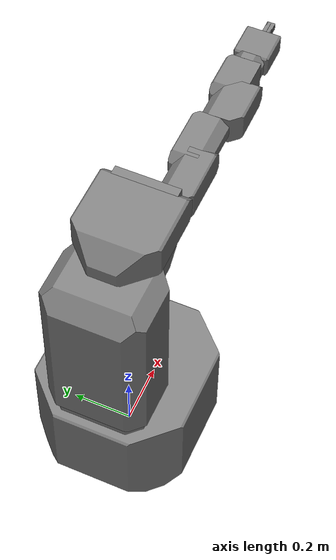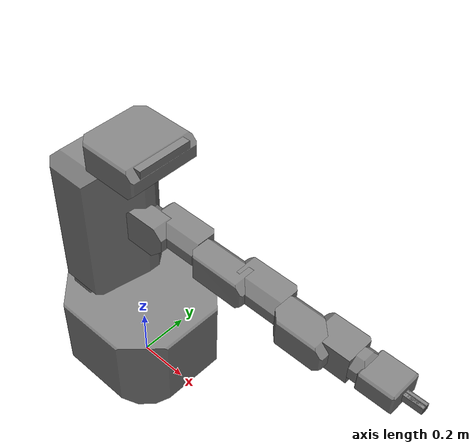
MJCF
<mujoco model="fetch">
    <compiler angle="radian" meshdir="meshes/" autolimits="true"/>
    <asset>
        <mesh name="base_link_visual" file="base_link_visual.stl"/>
        <mesh name="base_link_collision" file="base_link_collision.stl"/>
        <mesh name="wheel_link_l_visual" file="wheel_link_l_visual.stl"/>
        <mesh name="wheel_link_l_collision" file="wheel_link_l_collision.stl"/>
        <mesh name="wheel_link_r_visual" file="wheel_link_r_visual.stl"/>
        <mesh name="wheel_link_r_collision" file="wheel_link_r_collision.stl"/>
        <mesh name="torso_link_visual" file="torso_link_visual.stl"/>
        <mesh name="torso_link_collision" file="torso_link_collision.stl"/>
        <mesh name="torso_fixed_link_visual" file="torso_fixed_link_visual.stl"/>
        <mesh name="torso_fixed_link_collision" file="torso_fixed_link_collision.stl"/>
        <mesh name="estop_link_visual" file="estop_link_visual.stl"/>
        <mesh name="estop_link_collision" file="estop_link_collision.stl"/>
        <mesh name="laser_link_visual" file="laser_link_visual.stl"/>
        <mesh name="laser_link_collision" file="laser_link_collision.stl"/>
        <mesh name="arm_link_0_visual" file="arm_link_0_visual.stl"/>
        <mesh name="arm_link_0_collision" file="arm_link_0_collision.stl"/>
        <mesh name="arm_link_1_visual" file="arm_link_1_visual.stl"/>
        <mesh name="arm_link_1_collision" file="arm_link_1_collision.stl"/>
        <mesh name="arm_link_2_visual" file="arm_link_2_visual.stl"/>
        <mesh name="arm_link_2_collision" file="arm_link_2_collision.stl"/>
        <mesh name="arm_link_3_visual" file="arm_link_3_visual.stl"/>
        <mesh name="arm_link_3_collision" file="arm_link_3_collision.stl"/>
        <mesh name="arm_link_4_visual" file="arm_link_4_visual.stl"/>
        <mesh name="arm_link_4_collision" file="arm_link_4_collision.stl"/>
        <mesh name="arm_link_5_visual" file="arm_link_5_visual.stl"/>
        <mesh name="arm_link_5_collision" file="arm_link_5_collision.stl"/>
        <mesh name="arm_link_6_visual" file="arm_link_6_visual.stl"/>
        <mesh name="arm_link_6_collision" file="arm_link_6_collision.stl"/>
        <mesh name="gripper_link_visual" file="gripper_link_visual.stl"/>
        <mesh name="gripper_link_collision" file="gripper_link_collision.stl"/>
        <mesh name="gripper_finger_link_l_visual" file="gripper_finger_link_l_visual.stl"/>
        <mesh name="gripper_finger_link_l_collision" file="gripper_finger_link_l_collision.stl"/>
        <mesh name="gripper_finger_link_r_visual" file="gripper_finger_link_r_visual.stl"/>
        <mesh name="gripper_finger_link_r_collision" file="gripper_finger_link_r_collision.stl"/>
        <mesh name="head_pan_link_visual" file="head_pan_link_visual.stl"/>
        <mesh name="head_pan_link_collision" file="head_pan_link_collision.stl"/>
        <mesh name="head_tilt_link_visual" file="head_tilt_link_visual.stl"/>
        <mesh name="head_tilt_link_collision" file="head_tilt_link_collision.stl"/>
    </asset>
    <worldbody>
        <body name="base_link">
            <camera mode="track" name="tracker" pos="0 0 4"/>
            <inertial pos="-0.039078 0.000231793 0.303151" quat="0.701682 -0.103966 -0.105195 0.69697" mass="112.831"
                      diaginertia="8.65473 8.46657 3.7702"/>
            <joint name="dummy_joint" type="free"/>
            <geom name="base_link_visual" type="mesh" contype="0" conaffinity="0" group="1" density="0"
                  mesh="base_link_visual"/>
            <geom name="base_link_collision" type="mesh" mesh="base_link_collision"/>
            <geom name="torso_link_visual" pos="-0.086875 0 0.37743" type="mesh" contype="0" conaffinity="0" group="1"
                  density="0" mesh="torso_link_visual"/>
            <geom name="torso_link_collision" pos="-0.086875 0 0.37743" type="mesh" mesh="torso_link_collision"/>
            <geom name="torso_fixed_link_visual" pos="-0.086875 0 0.377425" type="mesh" contype="0" conaffinity="0"
                  group="1" density="0" mesh="torso_fixed_link_visual"/>
            <geom name="torso_fixed_link_collision" pos="-0.086875 0 0.377425" type="mesh"
                  mesh="torso_fixed_link_collision"/>
            <geom name="estop_link_visual" pos="-0.12465 0.23892 0.31127" quat="0.707105 0.707108 0 0" type="mesh"
                  contype="0" conaffinity="0" group="1" density="0" mesh="estop_link_visual"/>
            <geom name="estop_link_collision" pos="-0.12465 0.23892 0.31127" quat="0.707105 0.707108 0 0" type="mesh"
                  mesh="estop_link_collision"/>
            <geom name="laser_link_visual" pos="0.235 0 0.2878" quat="0 1 0 0" type="mesh" contype="0" conaffinity="0"
                  group="1" density="0" mesh="laser_link_visual"/>
            <geom name="laser_link_collision" pos="0.235 0 0.2878" quat="0 1 0 0" type="mesh"
                  mesh="laser_link_collision"/>
            <body name="wheel_link_l" pos="0.0012914 0.18738 0.055325">
                <inertial pos="-5.00679e-08 -0.000628419 -1.17183e-05" mass="0.928359"
                          diaginertia="0.00133768 0.00133768 0.00133768"/>
                <joint name="wheel_joint_l" pos="0 0 0" axis="0 1 0" damping="100"/>
                <geom name="wheel_link_l_visual" type="mesh" contype="0" conaffinity="0" group="1" density="0"
                      mesh="wheel_link_l_visual"/>
                <geom name="wheel_link_l_collision" type="mesh" mesh="wheel_link_l_collision"/>
            </body>
            <body name="wheel_link_r" pos="0.0012914 -0.18738 0.055325">
                <inertial pos="-5.00679e-08 -0.000628419 -1.17183e-05" mass="0.928359"
                          diaginertia="0.00133768 0.00133768 0.00133768"/>
                <joint name="wheel_joint_r" pos="0 0 0" axis="0 1 0" damping="100"/>
                <geom name="wheel_link_r_visual" type="mesh" contype="0" conaffinity="0" group="1" density="0"
                      mesh="wheel_link_r_visual"/>
                <geom name="wheel_link_r_collision" type="mesh" mesh="wheel_link_r_collision"/>
            </body>
            <body name="arm_link_0" pos="0.03265 0 0.72601">
                <inertial pos="0.0597524 0.0115767 0.0306527" quat="0.644642 0.249598 0.477192 0.54261" mass="2.42679"
                          diaginertia="0.0115888 0.0104702 0.00632095"/>
                <joint name="arm_joint_0" pos="0 0 0" axis="0 0 1" range="-1.6056 1.6056" damping="10"/>
                <geom name="arm_link_0_visual" type="mesh" contype="0" conaffinity="0" group="1" density="0"
                      mesh="arm_link_0_visual"/>
                <geom name="arm_link_0_collision" type="mesh" mesh="arm_link_0_collision"/>
                <body name="arm_link_1" pos="0.117 0 0.06">
                    <inertial pos="0.0646285 -0.0148527 -4.10768e-06" quat="-0.0225209 0.706773 0.0225177 0.706723"
                              mass="1.92394" diaginertia="0.00921198 0.00874368 0.00348826"/>
                    <joint name="arm_joint_1" pos="0 0 0" axis="0 1 0" range="-1.221 1.518" damping="10"/>
                    <geom name="arm_link_1_visual" type="mesh" contype="0" conaffinity="0" group="1" density="0"
                          mesh="arm_link_1_visual"/>
                    <geom name="arm_link_1_collision" type="mesh" mesh="arm_link_1_collision"/>
                    <body name="arm_link_2" pos="0.219 0 0">
                        <inertial pos="0.0609468 0.013723 -7.28639e-06" quat="-0.0217535 0.706889 0.0254119 0.706533"
                                  mass="1.92161" diaginertia="0.0091716 0.00869902 0.00348304"/>
                        <joint name="arm_joint_2" pos="0 0 0" axis="1 0 0" damping="10"/>
                        <geom name="arm_link_2_visual" type="mesh" contype="0" conaffinity="0" group="1" density="0"
                              mesh="arm_link_2_visual"/>
                        <geom name="arm_link_2_collision" type="mesh" mesh="arm_link_2_collision"/>
                        <body name="arm_link_3" pos="0.133 0 0">
                            <inertial pos="0.0652479 -0.0136339 -3.24867e-06"
                                      quat="-0.0273706 0.706604 0.027387 0.706549" mass="1.83165"
                                      diaginertia="0.00794602 0.00750576 0.0033075"/>
                            <joint name="arm_joint_3" pos="0 0 0" axis="0 1 0" range="-2.251 2.251" damping="1"/>
                            <geom name="arm_link_3_visual" type="mesh" contype="0" conaffinity="0" group="1" density="0"
                                  mesh="arm_link_3_visual"/>
                            <geom name="arm_link_3_collision" type="mesh" mesh="arm_link_3_collision"/>
                            <body name="arm_link_4" pos="0.197 0 0">
                                <inertial pos="0.0548723 0.026738 0.000262131"
                                          quat="-0.131653 0.696265 0.126274 0.694217" mass="1.768"
                                          diaginertia="0.00689594 0.00647769 0.00332891"/>
                                <joint name="arm_joint_4" pos="0 0 0" axis="1 0 0" damping="10"/>
                                <geom name="arm_link_4_visual" type="mesh" contype="0" conaffinity="0" group="1"
                                      density="0" mesh="arm_link_4_visual"/>
                                <geom name="arm_link_4_collision" type="mesh" mesh="arm_link_4_collision"/>
                                <body name="arm_link_5" pos="0.1245 0 0">
                                    <inertial pos="0.0362704 -0.00693841 -9.94034e-06"
                                              quat="-0.00989954 0.707048 0.0105657 0.707017" mass="1.59275"
                                              diaginertia="0.00508552 0.00461168 0.003089"/>
                                    <joint name="arm_joint_5" pos="0 0 0" axis="0 1 0" range="-2.16 2.16" damping="10"/>
                                    <geom name="arm_link_5_visual" type="mesh" contype="0" conaffinity="0" group="1"
                                          density="0" mesh="arm_link_5_visual"/>
                                    <geom name="arm_link_5_collision" type="mesh" mesh="arm_link_5_collision"/>
                                    <body name="arm_link_6" pos="0.1385 0 0">
                                        <inertial pos="0.0507589 -4.23366e-07 0.000134595"
                                                  quat="-1.1816e-05 0.706469 5.90844e-06 0.707744" mass="1.59229"
                                                  diaginertia="0.00510229 0.00430893 0.00253196"/>
                                        <joint name="arm_joint_6" pos="0 0 0" axis="1 0 0" damping="10"/>
                                        <geom name="arm_link_6_visual" type="mesh" contype="0" conaffinity="0" group="1"
                                              density="0" mesh="arm_link_6_visual"/>
                                        <geom name="arm_link_6_collision" type="mesh" mesh="arm_link_6_collision"/>
                                        <geom name="gripper_link_visual" pos="0.16645 0 0" type="mesh" contype="0"
                                              conaffinity="0" group="1" density="0" mesh="gripper_link_visual"/>
                                        <geom name="gripper_link_collision" pos="0.16645 0 0" type="mesh"
                                              mesh="gripper_link_collision"/>
                                        <body name="gripper_finger_link_l" pos="0.16645 0 0">
                                            <inertial pos="4.38073e-05 0.108626 0.000716377"
                                                      quat="0.500044 0.499573 0.500168 0.500215" mass="0.0785086"
                                                      diaginertia="4.12665e-05 3.75763e-05 6.98011e-06"/>
                                            <joint name="gripper_finger_joint_l" pos="0 0 0" axis="0 -1 0" type="slide"
                                                   range="0 0.05"/>
                                            <geom name="gripper_finger_link_l_visual" pos="0 0.101425 0" type="mesh"
                                                  contype="0" conaffinity="0" group="1" density="0"
                                                  mesh="gripper_finger_link_l_visual"/>
                                            <geom name="gripper_finger_link_l_collision" pos="0 0.101425 0" type="mesh"
                                                  mesh="gripper_finger_link_l_collision"/>
                                        </body>
                                        <body name="gripper_finger_link_r" pos="0.16645 0 0">
                                            <inertial pos="0 -0.108614 -4.88408e-06"
                                                      quat="0.499988 0.499988 0.500012 0.500012" mass="0.0744093"
                                                      diaginertia="3.87474e-05 3.55162e-05 6.15416e-06"/>
                                            <joint name="gripper_finger_joint_r" pos="0 0 0" axis="0 1 0" type="slide"
                                                   range="0 0.05"/>
                                            <geom name="gripper_finger_link_r_visual" pos="0 -0.101425 0" type="mesh"
                                                  contype="0" conaffinity="0" group="1" density="0"
                                                  mesh="gripper_finger_link_r_visual"/>
                                            <geom name="gripper_finger_link_r_collision" pos="0 -0.101425 0" type="mesh"
                                                  mesh="gripper_finger_link_r_collision"/>
                                        </body>
                                    </body>
                                </body>
                            </body>
                        </body>
                    </body>
                </body>
            </body>
            <body name="head_pan_link" pos="-0.03375 0 0.980431">
                <inertial pos="0.052108 -1.05103e-08 0.0566172" quat="0 0.697314 0 0.716765" mass="4.92362"
                          diaginertia="0.0607802 0.0365178 0.034006"/>
                <joint name="head_pan_joint" pos="0 0 0" axis="0 0 1" range="-1.57 1.57" damping="1"/>
                <geom name="head_pan_link_visual" type="mesh" contype="0" conaffinity="0" group="1" density="0"
                      mesh="head_pan_link_visual"/>
                <geom name="head_pan_link_collision" type="mesh" mesh="head_pan_link_collision"/>
                <body name="head_tilt_link" pos="0.14253 0 0.057999">
                    <inertial pos="0.00225553 -0.000111501 0.00229468" quat="0.653654 0.653687 0.269805 -0.269507"
                              mass="1.7198" diaginertia="0.00778109 0.00747929 0.00275096"/>
                    <joint name="head_tilt_joint" pos="0 0 0" axis="0 1 0" range="-0.76 1.45" damping="1"/>
                    <geom name="head_tilt_link_visual" type="mesh" contype="0" conaffinity="0" group="1" density="0"
                          mesh="head_tilt_link_visual"/>
                    <geom name="head_tilt_link_collision" type="mesh" mesh="head_tilt_link_collision"/>
                </body>
            </body>
            <body name="caster_link_fl_x" pos="0.15 0.12 0.055325">
                <inertial pos="0 0 0" quat="0.5 0.5 -0.5 0.5" mass="0.025"
                          diaginertia="0.00059083 0.00058083 3.0833e-05"/>
                <joint name="caster_joint_fl_x" pos="0 0 0" axis="1 0 0"/>
                <body name="caster_link_fl_z">
                    <inertial pos="0 0 0" quat="0.5 0.5 -0.5 0.5" mass="0.025"
                              diaginertia="0.00059083 0.00058083 3.0833e-05"/>
                    <joint name="caster_joint_fl_y" pos="0 0 0" axis="0 0 1"/>
                    <body name="caster_link_fl">
                        <inertial pos="0 0 0" mass="0.859567" diaginertia="0.00115663 0.00115663 0.00115663"/>
                        <joint name="caster_joint_fl" pos="0 0 0" axis="0 1 0"/>
                        <geom name="caster_link_fl_visual" size="0.058" contype="0" conaffinity="0" group="1"
                              density="0"/>
                        <geom name="caster_link_fl_collision" size="0.058"/>
                    </body>
                </body>
            </body>
            <body name="caster_link_fr_x" pos="0.15 -0.12 0.055325">
                <inertial pos="0 0 0" quat="0.5 0.5 -0.5 0.5" mass="0.025"
                          diaginertia="0.00059083 0.00058083 3.0833e-05"/>
                <joint name="caster_joint_fr_x" pos="0 0 0" axis="1 0 0"/>
                <body name="caster_link_fr_z">
                    <inertial pos="0 0 0" quat="0.5 0.5 -0.5 0.5" mass="0.025"
                              diaginertia="0.00059083 0.00058083 3.0833e-05"/>
                    <joint name="caster_joint_fr_y" pos="0 0 0" axis="0 0 1"/>
                    <body name="caster_link_fr">
                        <inertial pos="0 0 0" mass="0.859567" diaginertia="0.00115663 0.00115663 0.00115663"/>
                        <joint name="caster_joint_fr" pos="0 0 0" axis="0 1 0"/>
                        <geom name="caster_link_fr_visual" size="0.058" contype="0" conaffinity="0" group="1"
                              density="0"/>
                        <geom name="caster_link_fr_collision" size="0.058"/>
                    </body>
                </body>
            </body>
            <body name="caster_link_rl_x" pos="-0.2 -0.12 0.055325">
                <inertial pos="0 0 0" quat="0.5 0.5 -0.5 0.5" mass="0.025"
                          diaginertia="0.00059083 0.00058083 3.0833e-05"/>
                <joint name="caster_joint_rl_x" pos="0 0 0" axis="1 0 0"/>
                <body name="caster_link_rl_z">
                    <inertial pos="0 0 0" quat="0.5 0.5 -0.5 0.5" mass="0.025"
                              diaginertia="0.00059083 0.00058083 3.0833e-05"/>
                    <joint name="caster_joint_rl_y" pos="0 0 0" axis="0 0 1"/>
                    <body name="caster_link_rl">
                        <inertial pos="0 0 0" mass="0.859567" diaginertia="0.00115663 0.00115663 0.00115663"/>
                        <joint name="caster_joint_rl" pos="0 0 0" axis="0 1 0"/>
                        <geom name="caster_link_rl_visual" size="0.058" contype="0" conaffinity="0" group="1"
                              density="0"/>
                        <geom name="caster_link_rl_collision" size="0.058"/>
                    </body>
                </body>
            </body>
            <body name="caster_link_rr_x" pos="-0.2 0.12 0.055325">
                <inertial pos="0 0 0" quat="0.5 0.5 -0.5 0.5" mass="0.025"
                          diaginertia="0.00059083 0.00058083 3.0833e-05"/>
                <joint name="caster_joint_rr_x" pos="0 0 0" axis="1 0 0"/>
                <body name="caster_link_rr_z">
                    <inertial pos="0 0 0" quat="0.5 0.5 -0.5 0.5" mass="0.025"
                              diaginertia="0.00059083 0.00058083 3.0833e-05"/>
                    <joint name="caster_joint_rr_y" pos="0 0 0" axis="0 0 1"/>
                    <body name="caster_link_rr">
                        <inertial pos="0 0 0" mass="0.859567" diaginertia="0.00115663 0.00115663 0.00115663"/>
                        <joint name="caster_joint_rr" pos="0 0 0" axis="0 1 0"/>
                        <geom name="caster_link_rr_visual" size="0.058" contype="0" conaffinity="0" group="1"
                              density="0"/>
                        <geom name="caster_link_rr_collision" size="0.058"/>
                    </body>
                </body>
            </body>
        </body>
    </worldbody>

    <actuator>
        <!-- joiint position actuators -->
        <position kp="100" ctrllimited="true" ctrlrange="-1.6056 1.6056" forcelimited="true" forcerange="-33.82 33.82"
                  joint="arm_joint_0" name="arm_joint_0_act"/>
        <position kp="100" ctrllimited="true" ctrlrange="-1.221 1.518" forcelimited="true" forcerange="-131.76 131.76"
                  joint="arm_joint_1" name="arm_joint_1_act"/>
        <position kp="100" ctrllimited="true" ctrlrange="-3.14 3.14" forcelimited="true" forcerange="-76.94 76.94"
                  joint="arm_joint_2" name="arm_joint_2_act"/>
        <position kp="50" ctrllimited="true" ctrlrange="-2.251 2.251" forcelimited="true" forcerange="-66.18 66.18"
                  joint="arm_joint_3" name="arm_joint_3_act"/>
        <position kp="100" ctrllimited="true" ctrlrange="-3.14 3.14" forcelimited="true" forcerange="-29.35 29.35"
                  joint="arm_joint_4" name="arm_joint_4_act"/>
        <position kp="100" ctrllimited="true" ctrlrange="-2.16 2.16" forcelimited="true" forcerange="-25.7 25.7"
                  joint="arm_joint_5" name="arm_joint_5_act"/>
        <position kp="100" ctrllimited="true" ctrlrange="-3.14 3.14" forcelimited="true" forcerange="-7.36 7.36"
                  joint="arm_joint_6" name="arm_joint_6_act"/>

        <!-- gripper position actuators -->
        <position kp="1000" ctrllimited="true" ctrlrange="0 .05" joint="gripper_finger_joint_r"
                  name="gripper_finger_joint_r_act"/>
        <position kp="1000" ctrllimited="true" ctrlrange="0 .05" joint="gripper_finger_joint_l"
                  name="gripper_finger_joint_l_act"/>

        <!-- wheels torque actuators -->
        <motor name="wheel_joint_l_act" joint="wheel_joint_l" ctrllimited="true" ctrlrange="-1.0 1.0" gear="500.0"/>
        <motor name="wheel_joint_r_act" joint="wheel_joint_r" ctrllimited="true" ctrlrange="-1.0 1.0" gear="500.0"/>
    </actuator>
</mujoco>
